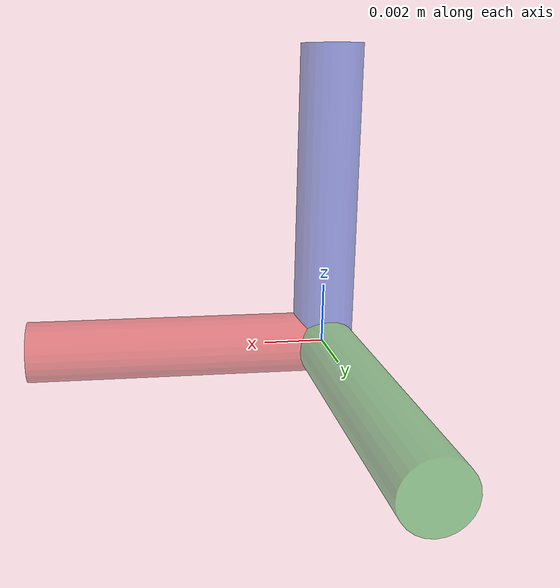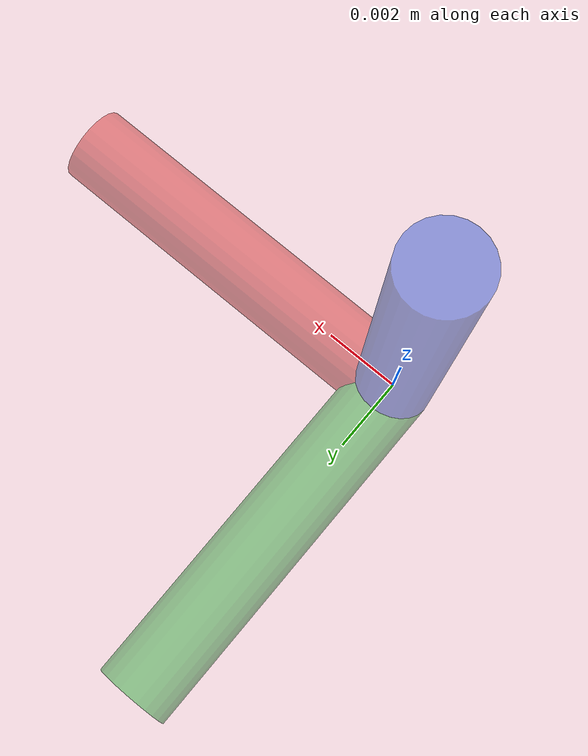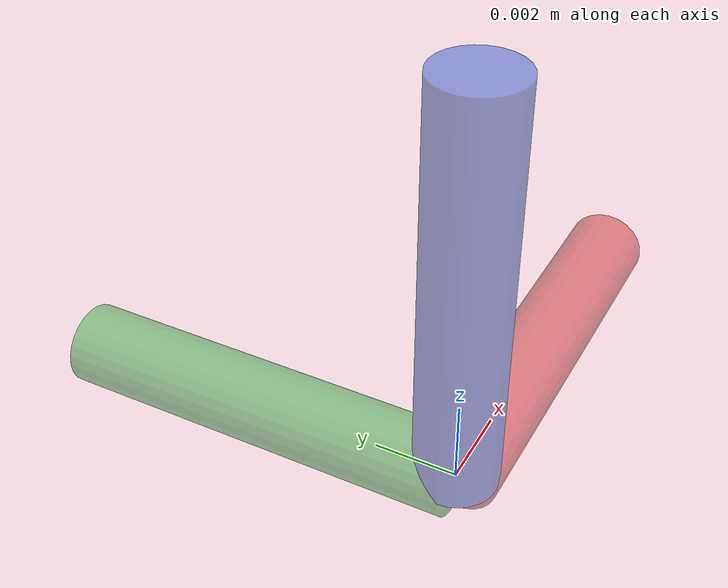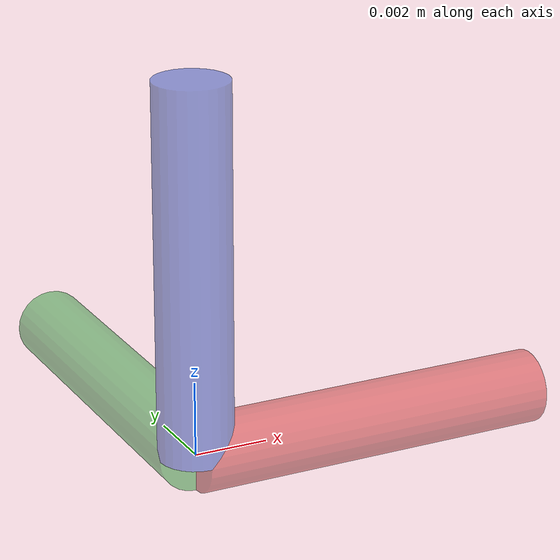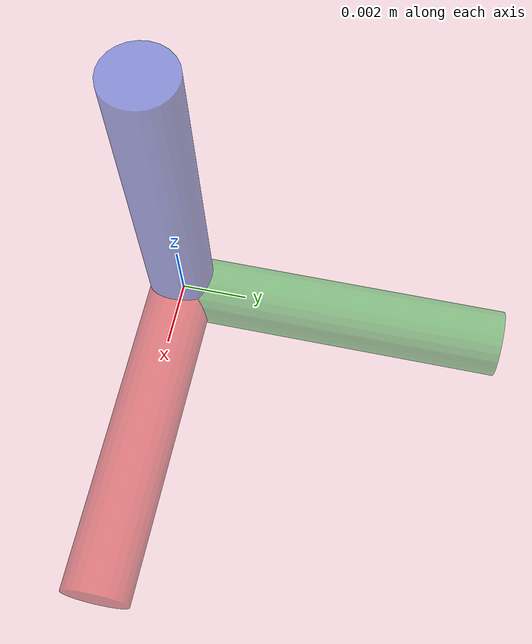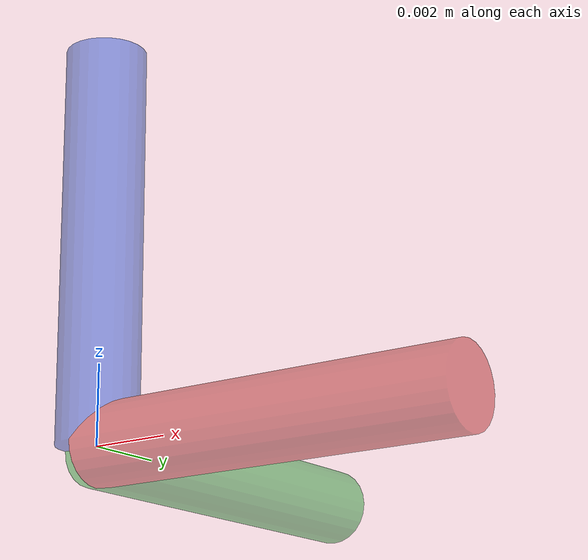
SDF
<?xml version='1.0'?>
<sdf version='1.6'>
  <model name='visual_marker'>
    <static>true</static>
    <link name='marker'>
      <pose frame=''>0.0 0.0 0.0 0 0 0</pose>
      <self_collide>0</self_collide>
      <kinematic>0</kinematic>
      <gravity>0</gravity>
      <visual name='visual_z'>
        <pose frame=''>0 0 0.005 0 0 0</pose>
        <geometry>
          <cylinder>
            <length>0.01</length>
            <radius>0.001</radius>
          </cylinder>
        </geometry>
        <material>
          <script>
            <uri>model://media/materials/scripts/gazebo.material</uri>
            <name>Gazebo/Blue</name>
          </script>
        </material>
        <transparency>0.5</transparency>
      </visual>
            <visual name='visual_y'>
        <pose frame=''>0 0.005 0 1.5707 0 0</pose>
        <geometry>
          <cylinder>
            <length>0.01</length>
            <radius>0.001</radius>
          </cylinder>
        </geometry>
        <material>
          <script>
            <uri>model://media/materials/scripts/gazebo.material</uri>
            <name>Gazebo/Green</name>
          </script>
        </material>
        <transparency>0.5</transparency>
      </visual>
            <visual name='visual_x'>
        <pose frame=''>0.005 0 0 0 1.5707 0</pose>
        <geometry>
          <cylinder>
            <length>0.01</length>
            <radius>0.001</radius>
          </cylinder>
        </geometry>
        <material>
          <script>
            <uri>model://media/materials/scripts/gazebo.material</uri>
            <name>Gazebo/Red</name>
          </script>
        </material>
        <transparency>0.5</transparency>
      </visual>
    </link>
    <allow_auto_disable>1</allow_auto_disable>
  </model>
</sdf>
